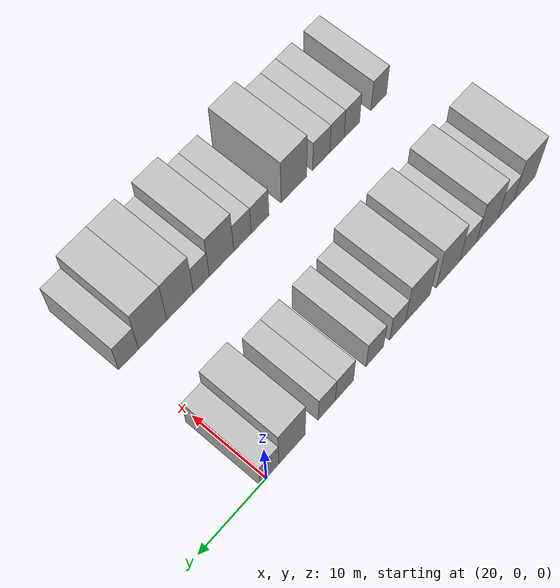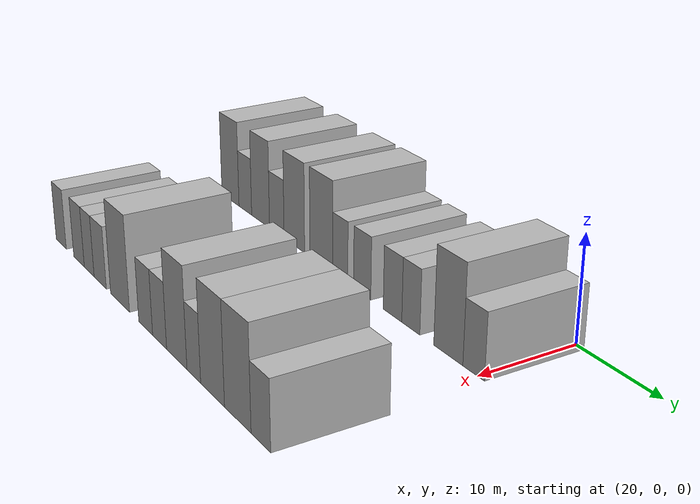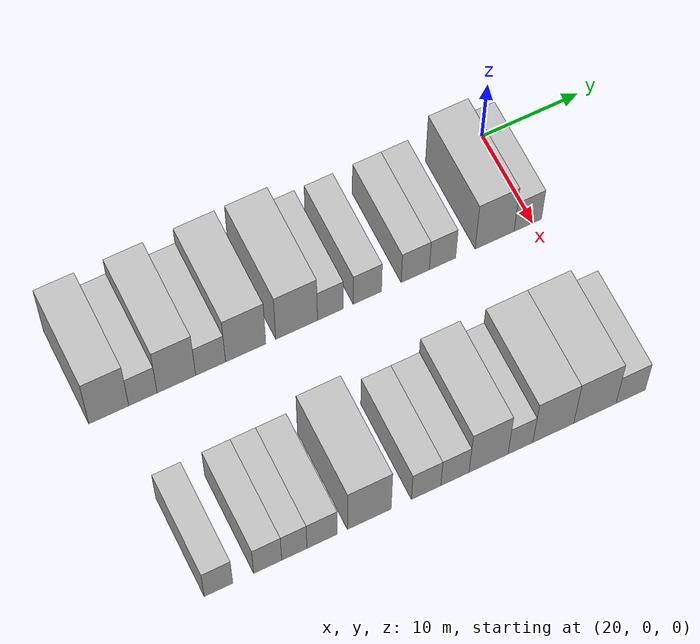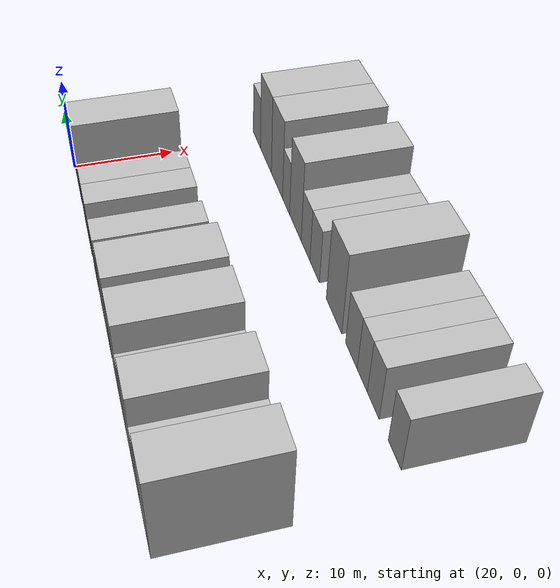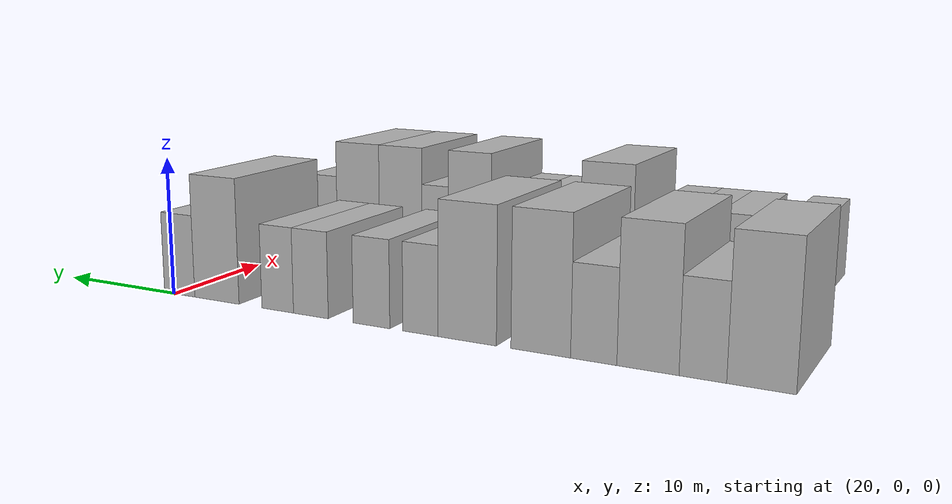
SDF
<sdf version="1.6">
 <world name="default">
  <model name="building_39">
   <static>1</static>
   <pose>25.0000 -42.6368 0 0.000000 0.000000 0.000000</pose>
   <link name="link">
    <pose>0 0 4.50 0 0 0</pose>
    <collision name="collision"><geometry><box><size>10.0000 3.8986 9.0000</size></box></geometry></collision>
    <visual name="visual">
     <cast_shadows>0</cast_shadows>
     <geometry><box><size>10.0000 3.8986 9.0000</size></box></geometry>
     <material>
      <script>
       <uri>model://HANNAS_wall/materials/scripts</uri>
       <uri>model://HANNAS_wall/materials/textures</uri>
       <name>vrc/HANNAS_wall</name>
      </script>
     </material>
    </visual>
   </link>
  </model>
  <model name="building_40">
   <static>1</static>
   <pose>25.0000 -39.2942 0 0.000000 0.000000 0.000000</pose>
   <link name="link">
    <pose>0 0 3.00 0 0 0</pose>
    <collision name="collision"><geometry><box><size>10.0000 2.7866 6.0000</size></box></geometry></collision>
    <visual name="visual">
     <cast_shadows>0</cast_shadows>
     <geometry><box><size>10.0000 2.7866 6.0000</size></box></geometry>
     <material>
      <script>
       <uri>model://HANNAS_wall/materials/scripts</uri>
       <uri>model://HANNAS_wall/materials/textures</uri>
       <name>vrc/HANNAS_wall</name>
      </script>
     </material>
    </visual>
   </link>
  </model>
  <model name="building_41">
   <static>1</static>
   <pose>25.0000 -36.0034 0 0.000000 0.000000 0.000000</pose>
   <link name="link">
    <pose>0 0 4.50 0 0 0</pose>
    <collision name="collision"><geometry><box><size>10.0000 3.7951 9.0000</size></box></geometry></collision>
    <visual name="visual">
     <cast_shadows>0</cast_shadows>
     <geometry><box><size>10.0000 3.7951 9.0000</size></box></geometry>
     <material>
      <script>
       <uri>model://HANNAS_wall/materials/scripts</uri>
       <uri>model://HANNAS_wall/materials/textures</uri>
       <name>vrc/HANNAS_wall</name>
      </script>
     </material>
    </visual>
   </link>
  </model>
  <model name="building_42">
   <static>1</static>
   <pose>25.0000 -32.6270 0 0.000000 0.000000 0.000000</pose>
   <link name="link">
    <pose>0 0 3.00 0 0 0</pose>
    <collision name="collision"><geometry><box><size>10.0000 2.9575 6.0000</size></box></geometry></collision>
    <visual name="visual">
     <cast_shadows>0</cast_shadows>
     <geometry><box><size>10.0000 2.9575 6.0000</size></box></geometry>
     <material>
      <script>
       <uri>model://HANNAS_wall/materials/scripts</uri>
       <uri>model://HANNAS_wall/materials/textures</uri>
       <name>vrc/HANNAS_wall</name>
      </script>
     </material>
    </visual>
   </link>
  </model>
  <model name="building_43">
   <static>1</static>
   <pose>25.0000 -29.1503 0 0.000000 0.000000 0.000000</pose>
   <link name="link">
    <pose>0 0 4.50 0 0 0</pose>
    <collision name="collision"><geometry><box><size>10.0000 3.9960 9.0000</size></box></geometry></collision>
    <visual name="visual">
     <cast_shadows>0</cast_shadows>
     <geometry><box><size>10.0000 3.9960 9.0000</size></box></geometry>
     <material>
      <script>
       <uri>model://HANNAS_wall/materials/scripts</uri>
       <uri>model://HANNAS_wall/materials/textures</uri>
       <name>vrc/HANNAS_wall</name>
      </script>
     </material>
    </visual>
   </link>
  </model>
  <model name="building_44">
   <static>1</static>
   <pose>25.0000 -24.0661 0 0.000000 0.000000 0.000000</pose>
   <link name="link">
    <pose>0 0 4.50 0 0 0</pose>
    <collision name="collision"><geometry><box><size>10.0000 4.1723 9.0000</size></box></geometry></collision>
    <visual name="visual">
     <cast_shadows>0</cast_shadows>
     <geometry><box><size>10.0000 4.1723 9.0000</size></box></geometry>
     <material>
      <script>
       <uri>model://HANNAS_wall/materials/scripts</uri>
       <uri>model://HANNAS_wall/materials/textures</uri>
       <name>vrc/HANNAS_wall</name>
      </script>
     </material>
    </visual>
   </link>
  </model>
  <model name="building_45">
   <static>1</static>
   <pose>25.0000 -20.6764 0 0.000000 0.000000 0.000000</pose>
   <link name="link">
    <pose>0 0 3.00 0 0 0</pose>
    <collision name="collision"><geometry><box><size>10.0000 2.6072 6.0000</size></box></geometry></collision>
    <visual name="visual">
     <cast_shadows>0</cast_shadows>
     <geometry><box><size>10.0000 2.6072 6.0000</size></box></geometry>
     <material>
      <script>
       <uri>model://HANNAS_wall/materials/scripts</uri>
       <uri>model://HANNAS_wall/materials/textures</uri>
       <name>vrc/HANNAS_wall</name>
      </script>
     </material>
    </visual>
   </link>
  </model>
  <model name="building_46">
   <static>1</static>
   <pose>25.0000 -16.9450 0 0.000000 0.000000 0.000000</pose>
   <link name="link">
    <pose>0 0 3.00 0 0 0</pose>
    <collision name="collision"><geometry><box><size>10.0000 2.8556 6.0000</size></box></geometry></collision>
    <visual name="visual">
     <cast_shadows>0</cast_shadows>
     <geometry><box><size>10.0000 2.8556 6.0000</size></box></geometry>
     <material>
      <script>
       <uri>model://HANNAS_wall/materials/scripts</uri>
       <uri>model://HANNAS_wall/materials/textures</uri>
       <name>vrc/HANNAS_wall</name>
      </script>
     </material>
    </visual>
   </link>
  </model>
  <model name="building_47">
   <static>1</static>
   <pose>25.0000 -12.0820 0 0.000000 0.000000 0.000000</pose>
   <link name="link">
    <pose>0 0 3.00 0 0 0</pose>
    <collision name="collision"><geometry><box><size>10.0000 2.8704 6.0000</size></box></geometry></collision>
    <visual name="visual">
     <cast_shadows>0</cast_shadows>
     <geometry><box><size>10.0000 2.8704 6.0000</size></box></geometry>
     <material>
      <script>
       <uri>model://HANNAS_wall/materials/scripts</uri>
       <uri>model://HANNAS_wall/materials/textures</uri>
       <name>vrc/HANNAS_wall</name>
      </script>
     </material>
    </visual>
   </link>
  </model>
  <model name="building_48">
   <static>1</static>
   <pose>25.0000 -9.2981 0 0.000000 0.000000 0.000000</pose>
   <link name="link">
    <pose>0 0 3.00 0 0 0</pose>
    <collision name="collision"><geometry><box><size>10.0000 2.6974 6.0000</size></box></geometry></collision>
    <visual name="visual">
     <cast_shadows>0</cast_shadows>
     <geometry><box><size>10.0000 2.6974 6.0000</size></box></geometry>
     <material>
      <script>
       <uri>model://HANNAS_wall/materials/scripts</uri>
       <uri>model://HANNAS_wall/materials/textures</uri>
       <name>vrc/HANNAS_wall</name>
      </script>
     </material>
    </visual>
   </link>
  </model>
  <model name="building_49">
   <static>1</static>
   <pose>25.0000 -3.9427 0 0.000000 0.000000 0.000000</pose>
   <link name="link">
    <pose>0 0 4.50 0 0 0</pose>
    <collision name="collision"><geometry><box><size>10.0000 4.0133 9.0000</size></box></geometry></collision>
    <visual name="visual">
     <cast_shadows>0</cast_shadows>
     <geometry><box><size>10.0000 4.0133 9.0000</size></box></geometry>
     <material>
      <script>
       <uri>model://HANNAS_wall/materials/scripts</uri>
       <uri>model://HANNAS_wall/materials/textures</uri>
       <name>vrc/HANNAS_wall</name>
      </script>
     </material>
    </visual>
   </link>
  </model>
  <model name="building_50">
   <static>1</static>
   <pose>25.0000 -0.5174 0 0.000000 0.000000 0.000000</pose>
   <link name="link">
    <pose>0 0 3.00 0 0 0</pose>
    <collision name="collision"><geometry><box><size>10.0000 2.8372 6.0000</size></box></geometry></collision>
    <visual name="visual">
     <cast_shadows>0</cast_shadows>
     <geometry><box><size>10.0000 2.8372 6.0000</size></box></geometry>
     <material>
      <script>
       <uri>model://HANNAS_wall/materials/scripts</uri>
       <uri>model://HANNAS_wall/materials/textures</uri>
       <name>vrc/HANNAS_wall</name>
      </script>
     </material>
    </visual>
   </link>
  </model>
  <model name="building_133">
   <static>1</static>
   <pose>44.0000 -40.7805 0 0.000000 0.000000 0.000000</pose>
   <link name="link">
    <pose>0 0 3.00 0 0 0</pose>
    <collision name="collision"><geometry><box><size>10.0000 2.7321 6.0000</size></box></geometry></collision>
    <visual name="visual">
     <cast_shadows>0</cast_shadows>
     <geometry><box><size>10.0000 2.7321 6.0000</size></box></geometry>
     <material>
      <script>
       <uri>model://HANNAS_wall/materials/scripts</uri>
       <uri>model://HANNAS_wall/materials/textures</uri>
       <name>vrc/HANNAS_wall</name>
      </script>
     </material>
    </visual>
   </link>
  </model>
  <model name="building_134">
   <static>1</static>
   <pose>44.0000 -36.0604 0 0.000000 0.000000 0.000000</pose>
   <link name="link">
    <pose>0 0 3.00 0 0 0</pose>
    <collision name="collision"><geometry><box><size>10.0000 2.7082 6.0000</size></box></geometry></collision>
    <visual name="visual">
     <cast_shadows>0</cast_shadows>
     <geometry><box><size>10.0000 2.7082 6.0000</size></box></geometry>
     <material>
      <script>
       <uri>model://HANNAS_wall/materials/scripts</uri>
       <uri>model://HANNAS_wall/materials/textures</uri>
       <name>vrc/HANNAS_wall</name>
      </script>
     </material>
    </visual>
   </link>
  </model>
  <model name="building_135">
   <static>1</static>
   <pose>44.0000 -33.4854 0 0.000000 0.000000 0.000000</pose>
   <link name="link">
    <pose>0 0 3.00 0 0 0</pose>
    <collision name="collision"><geometry><box><size>10.0000 2.4419 6.0000</size></box></geometry></collision>
    <visual name="visual">
     <cast_shadows>0</cast_shadows>
     <geometry><box><size>10.0000 2.4419 6.0000</size></box></geometry>
     <material>
      <script>
       <uri>model://HANNAS_wall/materials/scripts</uri>
       <uri>model://HANNAS_wall/materials/textures</uri>
       <name>vrc/HANNAS_wall</name>
      </script>
     </material>
    </visual>
   </link>
  </model>
  <model name="building_136">
   <static>1</static>
   <pose>44.0000 -30.8002 0 0.000000 0.000000 0.000000</pose>
   <link name="link">
    <pose>0 0 3.00 0 0 0</pose>
    <collision name="collision"><geometry><box><size>10.0000 2.9286 6.0000</size></box></geometry></collision>
    <visual name="visual">
     <cast_shadows>0</cast_shadows>
     <geometry><box><size>10.0000 2.9286 6.0000</size></box></geometry>
     <material>
      <script>
       <uri>model://HANNAS_wall/materials/scripts</uri>
       <uri>model://HANNAS_wall/materials/textures</uri>
       <name>vrc/HANNAS_wall</name>
      </script>
     </material>
    </visual>
   </link>
  </model>
  <model name="building_137">
   <static>1</static>
   <pose>44.0000 -26.2030 0 0.000000 0.000000 0.000000</pose>
   <link name="link">
    <pose>0 0 4.50 0 0 0</pose>
    <collision name="collision"><geometry><box><size>10.0000 4.2658 9.0000</size></box></geometry></collision>
    <visual name="visual">
     <cast_shadows>0</cast_shadows>
     <geometry><box><size>10.0000 4.2658 9.0000</size></box></geometry>
     <material>
      <script>
       <uri>model://HANNAS_wall/materials/scripts</uri>
       <uri>model://HANNAS_wall/materials/textures</uri>
       <name>vrc/HANNAS_wall</name>
      </script>
     </material>
    </visual>
   </link>
  </model>
  <model name="building_138">
   <static>1</static>
   <pose>44.0000 -20.6265 0 0.000000 0.000000 0.000000</pose>
   <link name="link">
    <pose>0 0 3.00 0 0 0</pose>
    <collision name="collision"><geometry><box><size>10.0000 2.8872 6.0000</size></box></geometry></collision>
    <visual name="visual">
     <cast_shadows>0</cast_shadows>
     <geometry><box><size>10.0000 2.8872 6.0000</size></box></geometry>
     <material>
      <script>
       <uri>model://HANNAS_wall/materials/scripts</uri>
       <uri>model://HANNAS_wall/materials/textures</uri>
       <name>vrc/HANNAS_wall</name>
      </script>
     </material>
    </visual>
   </link>
  </model>
  <model name="building_139">
   <static>1</static>
   <pose>44.0000 -17.7845 0 0.000000 0.000000 0.000000</pose>
   <link name="link">
    <pose>0 0 3.00 0 0 0</pose>
    <collision name="collision"><geometry><box><size>10.0000 2.7968 6.0000</size></box></geometry></collision>
    <visual name="visual">
     <cast_shadows>0</cast_shadows>
     <geometry><box><size>10.0000 2.7968 6.0000</size></box></geometry>
     <material>
      <script>
       <uri>model://HANNAS_wall/materials/scripts</uri>
       <uri>model://HANNAS_wall/materials/textures</uri>
       <name>vrc/HANNAS_wall</name>
      </script>
     </material>
    </visual>
   </link>
  </model>
  <model name="building_140">
   <static>1</static>
   <pose>44.0000 -14.4493 0 0.000000 0.000000 0.000000</pose>
   <link name="link">
    <pose>0 0 4.50 0 0 0</pose>
    <collision name="collision"><geometry><box><size>10.0000 3.8735 9.0000</size></box></geometry></collision>
    <visual name="visual">
     <cast_shadows>0</cast_shadows>
     <geometry><box><size>10.0000 3.8735 9.0000</size></box></geometry>
     <material>
      <script>
       <uri>model://HANNAS_wall/materials/scripts</uri>
       <uri>model://HANNAS_wall/materials/textures</uri>
       <name>vrc/HANNAS_wall</name>
      </script>
     </material>
    </visual>
   </link>
  </model>
  <model name="building_141">
   <static>1</static>
   <pose>44.0000 -11.2687 0 0.000000 0.000000 0.000000</pose>
   <link name="link">
    <pose>0 0 3.00 0 0 0</pose>
    <collision name="collision"><geometry><box><size>10.0000 2.4877 6.0000</size></box></geometry></collision>
    <visual name="visual">
     <cast_shadows>0</cast_shadows>
     <geometry><box><size>10.0000 2.4877 6.0000</size></box></geometry>
     <material>
      <script>
       <uri>model://HANNAS_wall/materials/scripts</uri>
       <uri>model://HANNAS_wall/materials/textures</uri>
       <name>vrc/HANNAS_wall</name>
      </script>
     </material>
    </visual>
   </link>
  </model>
  <model name="building_142">
   <static>1</static>
   <pose>44.0000 -7.9699 0 0.000000 0.000000 0.000000</pose>
   <link name="link">
    <pose>0 0 4.50 0 0 0</pose>
    <collision name="collision"><geometry><box><size>10.0000 4.1098 9.0000</size></box></geometry></collision>
    <visual name="visual">
     <cast_shadows>0</cast_shadows>
     <geometry><box><size>10.0000 4.1098 9.0000</size></box></geometry>
     <material>
      <script>
       <uri>model://HANNAS_wall/materials/scripts</uri>
       <uri>model://HANNAS_wall/materials/textures</uri>
       <name>vrc/HANNAS_wall</name>
      </script>
     </material>
    </visual>
   </link>
  </model>
  <model name="building_143">
   <static>1</static>
   <pose>44.0000 -3.7766 0 0.000000 0.000000 0.000000</pose>
   <link name="link">
    <pose>0 0 4.50 0 0 0</pose>
    <collision name="collision"><geometry><box><size>10.0000 4.2767 9.0000</size></box></geometry></collision>
    <visual name="visual">
     <cast_shadows>0</cast_shadows>
     <geometry><box><size>10.0000 4.2767 9.0000</size></box></geometry>
     <material>
      <script>
       <uri>model://HANNAS_wall/materials/scripts</uri>
       <uri>model://HANNAS_wall/materials/textures</uri>
       <name>vrc/HANNAS_wall</name>
      </script>
     </material>
    </visual>
   </link>
  </model>
  <model name="building_144">
   <static>1</static>
   <pose>44.0000 -0.1528 0 0.000000 0.000000 0.000000</pose>
   <link name="link">
    <pose>0 0 3.00 0 0 0</pose>
    <collision name="collision"><geometry><box><size>10.0000 2.9710 6.0000</size></box></geometry></collision>
    <visual name="visual">
     <cast_shadows>0</cast_shadows>
     <geometry><box><size>10.0000 2.9710 6.0000</size></box></geometry>
     <material>
      <script>
       <uri>model://HANNAS_wall/materials/scripts</uri>
       <uri>model://HANNAS_wall/materials/textures</uri>
       <name>vrc/HANNAS_wall</name>
      </script>
     </material>
    </visual>
   </link>
  </model>
 </world>
</sdf>
